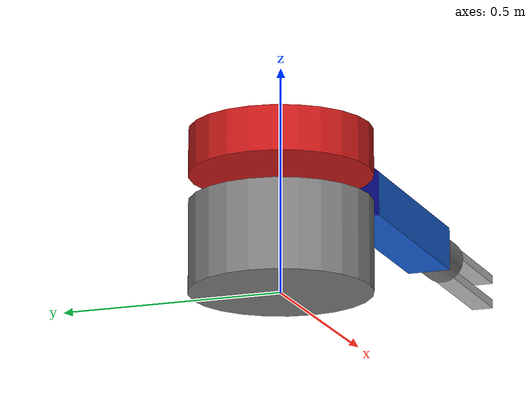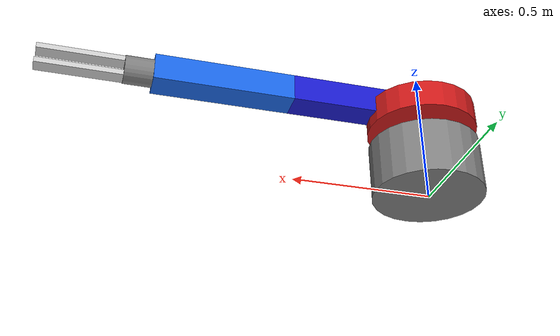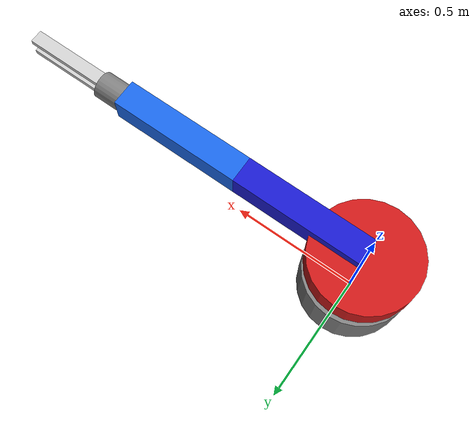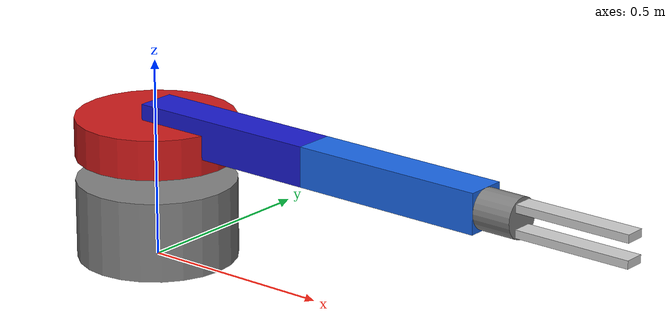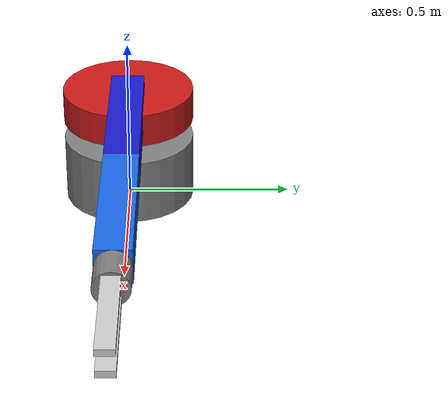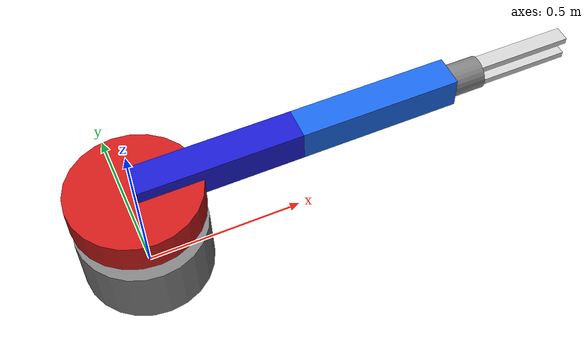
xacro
<?xml version="1.0"?>
<robot name="sim_sensor_robot" xmlns:xacro="http://www.ros.org/wiki/xacro">

  <!-- ========== PROPERTIES (xacro variables) ========== -->
  <xacro:property name="base_radius"   value="0.2"/>
  <xacro:property name="base_length"   value="0.2"/>
  <xacro:property name="arm_length"    value="0.5"/>
  <xacro:property name="arm_width"     value="0.1"/>
  <xacro:property name="finger_length" value="0.3"/>

  <!-- ========== BASE LINK ========== -->
  <link name="base_link">
    <visual>
      <origin xyz="0 0 0.1" rpy="0 0 0"/>
      <geometry>
        <cylinder length="${base_length}" radius="${base_radius}"/>
      </geometry>
      <material name="grey">
        <color rgba="0.5 0.5 0.5 1"/>
      </material>
    </visual>
    <collision>
      <origin xyz="0 0 0.1" rpy="0 0 0"/>
      <geometry>
        <cylinder length="${base_length}" radius="${base_radius}"/>
      </geometry>
    </collision>
    <inertial>
      <origin xyz="0 0 0.1" rpy="0 0 0"/>
      <mass value="12"/>
      <inertia ixx="0.1" ixy="0" ixz="0" iyy="0.1" iyz="0" izz="0.1"/>
    </inertial>
  </link>
  <gazebo reference="base_link">
    <material>Gazebo/Grey</material>
  </gazebo>

  <!-- ========== BASE TOP ========== -->
  <link name="base_top">
    <visual>
      <origin rpy="0 0 0" xyz="0 0 0.11"/>
      <geometry>
        <cylinder radius="${base_radius}" length="0.1"/>
      </geometry>
      <material name="red">
        <color rgba="0.8 0.1 0.1 1"/>
      </material>
    </visual>
    <inertial>
      <mass value="1"/>
      <inertia ixx="0.01" ixy="0" ixz="0" iyy="0.01" iyz="0" izz="0.01"/>
    </inertial>
  </link>
  <gazebo reference="base_top">
    <material>Gazebo/Red</material>
  </gazebo>

  <joint name="base_link_to_base_top" type="continuous">
    <parent link="base_link"/>
    <child link="base_top"/>
    <origin xyz="0 0 0.2" rpy="0 0 0"/>
    <axis xyz="0 0 1"/>
  </joint>

  <!-- ========== ARM 1 (shoulder) ========== -->
  <link name="base_arm">
    <visual>
      <origin xyz="${arm_length/2} 0 0" rpy="0 0 0"/>
      <geometry>
        <box size="${arm_length} ${arm_width} ${arm_width}"/>
      </geometry>
      <material name="blue">
        <color rgba="0.1 0.1 0.8 1"/>
      </material>
    </visual>
    <collision>
      <origin xyz="${arm_length/2} 0 0" rpy="0 0 0"/>
      <geometry>
        <box size="${arm_length} ${arm_width} ${arm_width}"/>
      </geometry>
    </collision>
    <inertial>
      <mass value="1"/>
      <inertia ixx="0.01" ixy="0" ixz="0" iyy="0.01" iyz="0" izz="0.01"/>
    </inertial>
  </link>
  <gazebo reference="base_arm">
    <material>Gazebo/Blue</material>
  </gazebo>

  <joint name="base_top_to_base_arm" type="revolute">
    <parent link="base_top"/>
    <child link="base_arm"/>
    <origin xyz="0 0 0.15" rpy="0 0 0"/>
    <axis xyz="0 1 0"/>
    <limit lower="-1.57" upper="1.57" effort="10" velocity="1"/>
  </joint>

  <!-- ========== ARM 2 (elbow) ========== -->
  <link name="middle_arm">
    <visual>
      <origin xyz="${arm_length/2} 0 0" rpy="0 0 0"/>
      <geometry>
        <box size="${arm_length} ${arm_width} ${arm_width}"/>
      </geometry>
      <material name="blue2">
        <color rgba="0.1 0.4 0.9 1"/>
      </material>
    </visual>
    <collision>
      <origin xyz="${arm_length/2} 0 0" rpy="0 0 0"/>
      <geometry>
        <box size="${arm_length} ${arm_width} ${arm_width}"/>
      </geometry>
    </collision>
    <inertial>
      <mass value="1"/>
      <inertia ixx="0.01" ixy="0" ixz="0" iyy="0.01" iyz="0" izz="0.01"/>
    </inertial>
  </link>
  <gazebo reference="middle_arm">
    <material>Gazebo/SkyBlue</material>
  </gazebo>

  <joint name="base_arm_to_middle_arm" type="revolute">
    <parent link="base_arm"/>
    <child link="middle_arm"/>
    <origin xyz="${arm_length} 0 0" rpy="0 0 0"/>
    <axis xyz="0 1 0"/>
    <limit lower="-1.57" upper="1.57" effort="10" velocity="1"/>
  </joint>

  <!-- ========== WRIST ========== -->
  <link name="wrist">
    <visual>
      <origin xyz="0.05 0 0" rpy="0 1.5707 0"/>
      <geometry>
        <cylinder radius="0.05" length="0.1"/>
      </geometry>
      <material name="grey2">
        <color rgba="0.5 0.5 0.5 1"/>
      </material>
    </visual>
    <inertial>
      <mass value="0.5"/>
      <inertia ixx="0.01" ixy="0" ixz="0" iyy="0.01" iyz="0" izz="0.01"/>
    </inertial>
  </link>
  <gazebo reference="wrist">
    <material>Gazebo/Grey</material>
  </gazebo>

  <joint name="middle_arm_to_wrist" type="continuous">
    <parent link="middle_arm"/>
    <child link="wrist"/>
    <origin xyz="${arm_length} 0 0" rpy="0 0 0"/>
    <axis xyz="1 0 0"/>
  </joint>

  <!-- ========== FINGER LEFT ========== -->
  <link name="finger_left">
    <visual>
      <origin xyz="${finger_length/2} 0 0" rpy="0 0 0"/>
      <geometry>
        <box size="${finger_length} 0.05 0.02"/>
      </geometry>
      <material name="silver">
        <color rgba="0.8 0.8 0.8 1"/>
      </material>
    </visual>
    <inertial>
      <mass value="0.2"/>
      <inertia ixx="0.001" ixy="0" ixz="0" iyy="0.001" iyz="0" izz="0.001"/>
    </inertial>
  </link>
  <gazebo reference="finger_left">
    <material>Gazebo/White</material>
  </gazebo>

  <joint name="wrist_to_finger_left" type="revolute">
    <parent link="wrist"/>
    <child link="finger_left"/>
    <origin xyz="0.1 0 0.03" rpy="0 0 0"/>
    <axis xyz="0 1 0"/>
    <limit lower="-0.5" upper="0" effort="5" velocity="1"/>
  </joint>

  <!-- ========== FINGER RIGHT ========== -->
  <link name="finger_right">
    <visual>
      <origin xyz="${finger_length/2} 0 0" rpy="0 0 0"/>
      <geometry>
        <box size="${finger_length} 0.05 0.02"/>
      </geometry>
      <material name="silver2">
        <color rgba="0.8 0.8 0.8 1"/>
      </material>
    </visual>
    <inertial>
      <mass value="0.2"/>
      <inertia ixx="0.001" ixy="0" ixz="0" iyy="0.001" iyz="0" izz="0.001"/>
    </inertial>
  </link>
  <gazebo reference="finger_right">
    <material>Gazebo/White</material>
  </gazebo>

  <joint name="wrist_to_finger_right" type="revolute">
    <parent link="wrist"/>
    <child link="finger_right"/>
    <origin xyz="0.1 0 -0.03" rpy="0 0 0"/>
    <axis xyz="0 -1 0"/>
    <limit lower="-0.5" upper="0" effort="5" velocity="1"/>
  </joint>

  <!-- ========== ROS2 CONTROL ========== -->
  <ros2_control name="eliana_control" type="system">
    <hardware>
      <plugin>gazebo_ros2_control/GazeboSystem</plugin>
    </hardware>

    <joint name="base_link_to_base_top">
      <command_interface name="velocity"/>
      <state_interface name="position"/>
      <state_interface name="velocity"/>
    </joint>

    <joint name="base_top_to_base_arm">
      <command_interface name="position"/>
      <state_interface name="position"/>
      <state_interface name="velocity"/>
    </joint>

    <joint name="base_arm_to_middle_arm">
      <command_interface name="position"/>
      <state_interface name="position"/>
      <state_interface name="velocity"/>
    </joint>

    <joint name="middle_arm_to_wrist">
      <command_interface name="velocity"/>
      <state_interface name="position"/>
      <state_interface name="velocity"/>
    </joint>

    <joint name="wrist_to_finger_left">
      <command_interface name="position"/>
      <state_interface name="position"/>
      <state_interface name="velocity"/>
    </joint>

    <joint name="wrist_to_finger_right">
      <command_interface name="position"/>
      <state_interface name="position"/>
      <state_interface name="velocity"/>
    </joint>
  </ros2_control>

  <!-- Gazebo plugin that loads ros2_control -->
  <gazebo>
    <plugin filename="libgazebo_ros2_control.so" name="gazebo_ros2_control">
      <parameters>$(find sim_sensor_description)/config/controllers.yaml</parameters>
    </plugin>
  </gazebo>

</robot>
